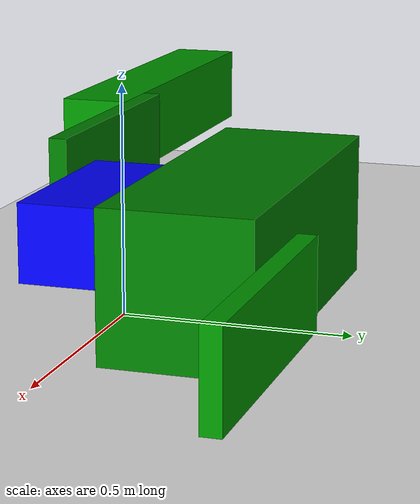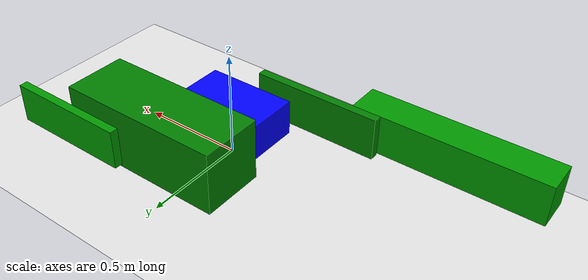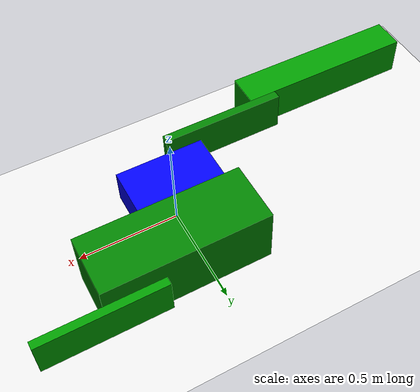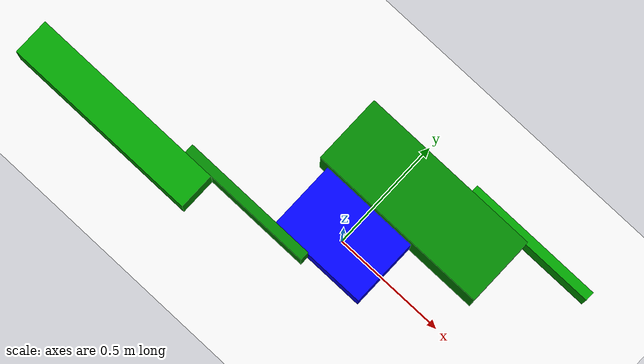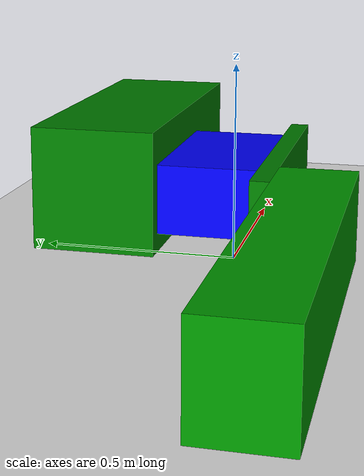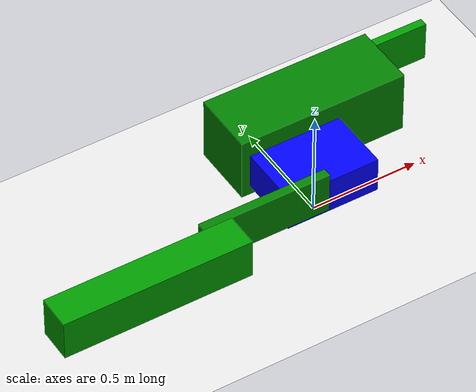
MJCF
<mujoco>
    <worldbody>
    <light diffuse=".5 .5 .5" pos="0 0 3" dir="0 0 -1"/>
    <geom type="plane" size="5 5 0.1" rgba=".9 0.9 0.9 1"/>
    <body name="main body" pos="0 0 .2">
        <joint type="free"/>
        <geom type="box" size="0.216828890437737 0.14695411359216412 0.08457970743722419" rgba="0 0 1 1" mass="1"/>
        <site name="marker" pos="0 0 0" size="0.05"/>
        <site name="robot_center" pos="0 0 0" size="0.01"/>
        <body name="left_leg1" pos="0.13904952036170523 0.2969541135921641 0.01931729814588523">
            <joint name="left_leg1_joint" type="hinge" axis="0 1 0" pos="0 0 0"/>
            <geom type="box" size="0.3962342122402767 0.15 0.15" rgba="0 .5 0 1" mass="2"/>
            <body name="left_leg2" pos="0.4077833490650727 0.16999999999999998 -0.04">
                <joint name="left_leg2_joint" type="hinge" axis="0 1 0" pos="0 0 0"/>
                <geom type="box" size="0.3 0.02 0.0951312403893938" rgba="0 .6 0 1" mass="2"/>
            </body>
        </body>
        <body name="right_leg1" pos="-0.34441511756679316 -0.1669541135921641 0.06695624659979883">
            <joint name="right_leg1_joint" type="hinge" axis="0 1 0" pos="0 0 0"/>
            <geom type="box" size="0.3 0.02 0.09839524196007807" rgba="0 .5 0 1" mass="2"/>
            <body name="right_leg2" pos="-0.6 -0.09966691621892637 0.00485217509604664">
                <joint name="right_leg2_joint" type="hinge" axis="0 1 0" pos="0 0 0"/>
                <geom type="box" size="0.4337412844161905 0.07966691621892637 0.09359044051554989" rgba="0 .6 0 1" mass="2"/>
            </body>
        </body>
    </body>
    </worldbody>
    <sensor>
        <framepos objtype="site" objname="marker"/>
        <velocimeter name="robot_velocity" site="robot_center"/>
    </sensor>
    <actuator>
        <position joint="left_leg1_joint" kp="10"/>
        <position joint="left_leg2_joint" kp="10"/>
        <position joint="right_leg1_joint" kp="10"/>
        <position joint="right_leg2_joint" kp="10"/>
    </actuator>
</mujoco>
